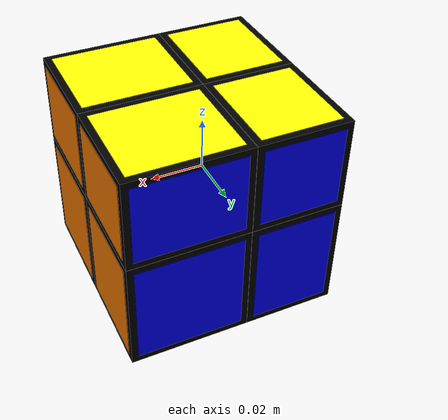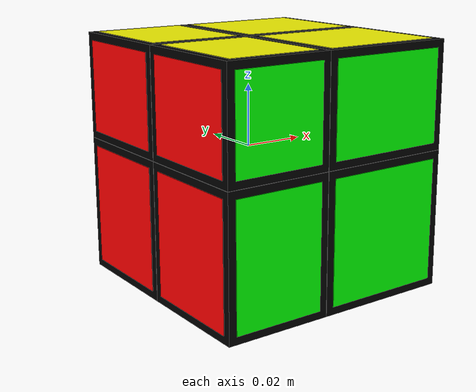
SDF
<?xml version="1.0" ?>
<sdf version="1.7">
	<model name="mirror_cube_2x2">
		<link name="center"/>
		<link name="cubie_0_0_0">
			<pose>-0.017550000000000003 -0.020050000000000002 -0.02255 0.0 0.0 0.0</pose>
			<inertial>
				<mass>0.024570000000000005</mass>
				<inertia>
					<ixx>7.422187500000001e-06</ixx>
					<ixy>0.0</ixy>
					<ixz>0.0</ixz>
					<iyy>6.654375000000002e-06</iyy>
					<iyz>0.0</iyz>
					<izz>5.784187500000001e-06</izz>
				</inertia>
			</inertial>
			<collision name="collision">
				<geometry>
					<box>
						<size>0.035 0.04 0.045</size>
					</box>
				</geometry>
				<surface>
					<friction>
						<ode>
							<mu>0.6</mu>
							<mu2>0.6</mu2>
						</ode>
					</friction>
				</surface>
			</collision>
			<visual name="black">
				<geometry>
					<box>
						<size>0.035 0.04 0.045</size>
					</box>
				</geometry>
				<material>
					<diffuse>0 0 0 1</diffuse>
				</material>
			</visual>
			<visual name="red">
				<pose>-0.0175 0.0 0.0 0.0 0.0 0.0</pose>
				<geometry>
					<box>
						<size>0.0003 0.035 0.04</size>
					</box>
				</geometry>
				<material>
					<diffuse>1 0 0 1</diffuse>
				</material>
			</visual>
			<visual name="green">
				<pose>0.0 -0.02 0.0 0.0 0.0 0.0</pose>
				<geometry>
					<box>
						<size>0.03 0.00035 0.04</size>
					</box>
				</geometry>
				<material>
					<diffuse>0 1 0 1</diffuse>
				</material>
			</visual>
			<visual name="white">
				<pose>0.0 0.0 -0.0225 0.0 0.0 0.0</pose>
				<geometry>
					<box>
						<size>0.03 0.035 0.0004</size>
					</box>
				</geometry>
				<material>
					<diffuse>1 1 1 1</diffuse>
				</material>
			</visual>
		</link>
		<joint name="ball_0_0_0" type="ball">
			<pose>0.017550000000000003 0.020050000000000002 0.02255 -0.0 -0.0 -0.0</pose>
			<parent>center</parent>
			<child>cubie_0_0_0</child>
			<axis>
				<dynamics>
					<damping>0.1</damping>
				</dynamics>
				<limit>
					<effort>0</effort>
				</limit>
			</axis>
		</joint>
		<link name="cubie_0_0_1">
			<pose>-0.017550000000000003 -0.020050000000000002 0.017550000000000003 0.0 0.0 0.0</pose>
			<inertial>
				<mass>0.019110000000000005</mass>
				<inertia>
					<ixx>4.498812500000002e-06</ixx>
					<ixy>0.0</ixy>
					<ixz>0.0</ixz>
					<iyy>3.901625000000002e-06</iyy>
					<iyz>0.0</iyz>
					<izz>4.498812500000002e-06</izz>
				</inertia>
			</inertial>
			<collision name="collision">
				<geometry>
					<box>
						<size>0.035 0.04 0.035</size>
					</box>
				</geometry>
				<surface>
					<friction>
						<ode>
							<mu>0.6</mu>
							<mu2>0.6</mu2>
						</ode>
					</friction>
				</surface>
			</collision>
			<visual name="black">
				<geometry>
					<box>
						<size>0.035 0.04 0.035</size>
					</box>
				</geometry>
				<material>
					<diffuse>0 0 0 1</diffuse>
				</material>
			</visual>
			<visual name="red">
				<pose>-0.0175 0.0 0.0 0.0 0.0 0.0</pose>
				<geometry>
					<box>
						<size>0.0003 0.035 0.03</size>
					</box>
				</geometry>
				<material>
					<diffuse>1 0 0 1</diffuse>
				</material>
			</visual>
			<visual name="green">
				<pose>0.0 -0.02 0.0 0.0 0.0 0.0</pose>
				<geometry>
					<box>
						<size>0.03 0.00035 0.03</size>
					</box>
				</geometry>
				<material>
					<diffuse>0 1 0 1</diffuse>
				</material>
			</visual>
			<visual name="yellow">
				<pose>0.0 0.0 0.0175 0.0 0.0 0.0</pose>
				<geometry>
					<box>
						<size>0.03 0.035 0.0003</size>
					</box>
				</geometry>
				<material>
					<diffuse>1 1 0 1</diffuse>
				</material>
			</visual>
		</link>
		<joint name="ball_0_0_1" type="ball">
			<pose>0.017550000000000003 0.020050000000000002 -0.017550000000000003 -0.0 -0.0 -0.0</pose>
			<parent>center</parent>
			<child>cubie_0_0_1</child>
			<axis>
				<dynamics>
					<damping>0.1</damping>
				</dynamics>
				<limit>
					<effort>0</effort>
				</limit>
			</axis>
		</joint>
		<link name="cubie_0_1_0">
			<pose>-0.017550000000000003 0.020050000000000002 -0.02255 0.0 0.0 0.0</pose>
			<inertial>
				<mass>0.024570000000000005</mass>
				<inertia>
					<ixx>7.422187500000001e-06</ixx>
					<ixy>0.0</ixy>
					<ixz>0.0</ixz>
					<iyy>6.654375000000002e-06</iyy>
					<iyz>0.0</iyz>
					<izz>5.784187500000001e-06</izz>
				</inertia>
			</inertial>
			<collision name="collision">
				<geometry>
					<box>
						<size>0.035 0.04 0.045</size>
					</box>
				</geometry>
				<surface>
					<friction>
						<ode>
							<mu>0.6</mu>
							<mu2>0.6</mu2>
						</ode>
					</friction>
				</surface>
			</collision>
			<visual name="black">
				<geometry>
					<box>
						<size>0.035 0.04 0.045</size>
					</box>
				</geometry>
				<material>
					<diffuse>0 0 0 1</diffuse>
				</material>
			</visual>
			<visual name="red">
				<pose>-0.0175 0.0 0.0 0.0 0.0 0.0</pose>
				<geometry>
					<box>
						<size>0.0003 0.035 0.04</size>
					</box>
				</geometry>
				<material>
					<diffuse>1 0 0 1</diffuse>
				</material>
			</visual>
			<visual name="blue">
				<pose>0.0 0.02 0.0 0.0 0.0 0.0</pose>
				<geometry>
					<box>
						<size>0.03 0.00035 0.04</size>
					</box>
				</geometry>
				<material>
					<diffuse>0 0 1 1</diffuse>
				</material>
			</visual>
			<visual name="white">
				<pose>0.0 0.0 -0.0225 0.0 0.0 0.0</pose>
				<geometry>
					<box>
						<size>0.03 0.035 0.0004</size>
					</box>
				</geometry>
				<material>
					<diffuse>1 1 1 1</diffuse>
				</material>
			</visual>
		</link>
		<joint name="ball_0_1_0" type="ball">
			<pose>0.017550000000000003 -0.020050000000000002 0.02255 -0.0 -0.0 -0.0</pose>
			<parent>center</parent>
			<child>cubie_0_1_0</child>
			<axis>
				<dynamics>
					<damping>0.1</damping>
				</dynamics>
				<limit>
					<effort>0</effort>
				</limit>
			</axis>
		</joint>
		<link name="cubie_0_1_1">
			<pose>-0.017550000000000003 0.020050000000000002 0.017550000000000003 0.0 0.0 0.0</pose>
			<inertial>
				<mass>0.019110000000000005</mass>
				<inertia>
					<ixx>4.498812500000002e-06</ixx>
					<ixy>0.0</ixy>
					<ixz>0.0</ixz>
					<iyy>3.901625000000002e-06</iyy>
					<iyz>0.0</iyz>
					<izz>4.498812500000002e-06</izz>
				</inertia>
			</inertial>
			<collision name="collision">
				<geometry>
					<box>
						<size>0.035 0.04 0.035</size>
					</box>
				</geometry>
				<surface>
					<friction>
						<ode>
							<mu>0.6</mu>
							<mu2>0.6</mu2>
						</ode>
					</friction>
				</surface>
			</collision>
			<visual name="black">
				<geometry>
					<box>
						<size>0.035 0.04 0.035</size>
					</box>
				</geometry>
				<material>
					<diffuse>0 0 0 1</diffuse>
				</material>
			</visual>
			<visual name="red">
				<pose>-0.0175 0.0 0.0 0.0 0.0 0.0</pose>
				<geometry>
					<box>
						<size>0.0003 0.035 0.03</size>
					</box>
				</geometry>
				<material>
					<diffuse>1 0 0 1</diffuse>
				</material>
			</visual>
			<visual name="blue">
				<pose>0.0 0.02 0.0 0.0 0.0 0.0</pose>
				<geometry>
					<box>
						<size>0.03 0.00035 0.03</size>
					</box>
				</geometry>
				<material>
					<diffuse>0 0 1 1</diffuse>
				</material>
			</visual>
			<visual name="yellow">
				<pose>0.0 0.0 0.0175 0.0 0.0 0.0</pose>
				<geometry>
					<box>
						<size>0.03 0.035 0.0003</size>
					</box>
				</geometry>
				<material>
					<diffuse>1 1 0 1</diffuse>
				</material>
			</visual>
		</link>
		<joint name="ball_0_1_1" type="ball">
			<pose>0.017550000000000003 -0.020050000000000002 -0.017550000000000003 -0.0 -0.0 -0.0</pose>
			<parent>center</parent>
			<child>cubie_0_1_1</child>
			<axis>
				<dynamics>
					<damping>0.1</damping>
				</dynamics>
				<limit>
					<effort>0</effort>
				</limit>
			</axis>
		</joint>
		<link name="cubie_1_0_0">
			<pose>0.02255 -0.020050000000000002 -0.02255 0.0 0.0 0.0</pose>
			<inertial>
				<mass>0.03158999999999999</mass>
				<inertia>
					<ixx>9.542812499999997e-06</ixx>
					<ixy>0.0</ixy>
					<ixz>0.0</ixz>
					<iyy>1.0661624999999996e-05</iyy>
					<iyz>0.0</iyz>
					<izz>9.542812499999997e-06</izz>
				</inertia>
			</inertial>
			<collision name="collision">
				<geometry>
					<box>
						<size>0.045 0.04 0.045</size>
					</box>
				</geometry>
				<surface>
					<friction>
						<ode>
							<mu>0.6</mu>
							<mu2>0.6</mu2>
						</ode>
					</friction>
				</surface>
			</collision>
			<visual name="black">
				<geometry>
					<box>
						<size>0.045 0.04 0.045</size>
					</box>
				</geometry>
				<material>
					<diffuse>0 0 0 1</diffuse>
				</material>
			</visual>
			<visual name="orange">
				<pose>0.0225 0.0 0.0 0.0 0.0 0.0</pose>
				<geometry>
					<box>
						<size>0.0004 0.035 0.04</size>
					</box>
				</geometry>
				<material>
					<diffuse>1.0 0.5 0.0 1.0</diffuse>
				</material>
			</visual>
			<visual name="green">
				<pose>0.0 -0.02 0.0 0.0 0.0 0.0</pose>
				<geometry>
					<box>
						<size>0.04 0.00035 0.04</size>
					</box>
				</geometry>
				<material>
					<diffuse>0 1 0 1</diffuse>
				</material>
			</visual>
			<visual name="white">
				<pose>0.0 0.0 -0.0225 0.0 0.0 0.0</pose>
				<geometry>
					<box>
						<size>0.04 0.035 0.0004</size>
					</box>
				</geometry>
				<material>
					<diffuse>1 1 1 1</diffuse>
				</material>
			</visual>
		</link>
		<joint name="ball_1_0_0" type="ball">
			<pose>-0.02255 0.020050000000000002 0.02255 -0.0 -0.0 -0.0</pose>
			<parent>center</parent>
			<child>cubie_1_0_0</child>
			<axis>
				<dynamics>
					<damping>0.1</damping>
				</dynamics>
				<limit>
					<effort>0</effort>
				</limit>
			</axis>
		</joint>
		<link name="cubie_1_0_1">
			<pose>0.02255 -0.020050000000000002 0.017550000000000003 0.0 0.0 0.0</pose>
			<inertial>
				<mass>0.02457</mass>
				<inertia>
					<ixx>5.784187500000001e-06</ixx>
					<ixy>0.0</ixy>
					<ixz>0.0</ixz>
					<iyy>6.654375000000002e-06</iyy>
					<iyz>0.0</iyz>
					<izz>7.422187500000001e-06</izz>
				</inertia>
			</inertial>
			<collision name="collision">
				<geometry>
					<box>
						<size>0.045 0.04 0.035</size>
					</box>
				</geometry>
				<surface>
					<friction>
						<ode>
							<mu>0.6</mu>
							<mu2>0.6</mu2>
						</ode>
					</friction>
				</surface>
			</collision>
			<visual name="black">
				<geometry>
					<box>
						<size>0.045 0.04 0.035</size>
					</box>
				</geometry>
				<material>
					<diffuse>0 0 0 1</diffuse>
				</material>
			</visual>
			<visual name="orange">
				<pose>0.0225 0.0 0.0 0.0 0.0 0.0</pose>
				<geometry>
					<box>
						<size>0.0004 0.035 0.03</size>
					</box>
				</geometry>
				<material>
					<diffuse>1.0 0.5 0.0 1.0</diffuse>
				</material>
			</visual>
			<visual name="green">
				<pose>0.0 -0.02 0.0 0.0 0.0 0.0</pose>
				<geometry>
					<box>
						<size>0.04 0.00035 0.03</size>
					</box>
				</geometry>
				<material>
					<diffuse>0 1 0 1</diffuse>
				</material>
			</visual>
			<visual name="yellow">
				<pose>0.0 0.0 0.0175 0.0 0.0 0.0</pose>
				<geometry>
					<box>
						<size>0.04 0.035 0.0003</size>
					</box>
				</geometry>
				<material>
					<diffuse>1 1 0 1</diffuse>
				</material>
			</visual>
		</link>
		<joint name="ball_1_0_1" type="ball">
			<pose>-0.02255 0.020050000000000002 -0.017550000000000003 -0.0 -0.0 -0.0</pose>
			<parent>center</parent>
			<child>cubie_1_0_1</child>
			<axis>
				<dynamics>
					<damping>0.1</damping>
				</dynamics>
				<limit>
					<effort>0</effort>
				</limit>
			</axis>
		</joint>
		<link name="cubie_1_1_0">
			<pose>0.02255 0.020050000000000002 -0.02255 0.0 0.0 0.0</pose>
			<inertial>
				<mass>0.03158999999999999</mass>
				<inertia>
					<ixx>9.542812499999997e-06</ixx>
					<ixy>0.0</ixy>
					<ixz>0.0</ixz>
					<iyy>1.0661624999999996e-05</iyy>
					<iyz>0.0</iyz>
					<izz>9.542812499999997e-06</izz>
				</inertia>
			</inertial>
			<collision name="collision">
				<geometry>
					<box>
						<size>0.045 0.04 0.045</size>
					</box>
				</geometry>
				<surface>
					<friction>
						<ode>
							<mu>0.6</mu>
							<mu2>0.6</mu2>
						</ode>
					</friction>
				</surface>
			</collision>
			<visual name="black">
				<geometry>
					<box>
						<size>0.045 0.04 0.045</size>
					</box>
				</geometry>
				<material>
					<diffuse>0 0 0 1</diffuse>
				</material>
			</visual>
			<visual name="orange">
				<pose>0.0225 0.0 0.0 0.0 0.0 0.0</pose>
				<geometry>
					<box>
						<size>0.0004 0.035 0.04</size>
					</box>
				</geometry>
				<material>
					<diffuse>1.0 0.5 0.0 1.0</diffuse>
				</material>
			</visual>
			<visual name="blue">
				<pose>0.0 0.02 0.0 0.0 0.0 0.0</pose>
				<geometry>
					<box>
						<size>0.04 0.00035 0.04</size>
					</box>
				</geometry>
				<material>
					<diffuse>0 0 1 1</diffuse>
				</material>
			</visual>
			<visual name="white">
				<pose>0.0 0.0 -0.0225 0.0 0.0 0.0</pose>
				<geometry>
					<box>
						<size>0.04 0.035 0.0004</size>
					</box>
				</geometry>
				<material>
					<diffuse>1 1 1 1</diffuse>
				</material>
			</visual>
		</link>
		<joint name="ball_1_1_0" type="ball">
			<pose>-0.02255 -0.020050000000000002 0.02255 -0.0 -0.0 -0.0</pose>
			<parent>center</parent>
			<child>cubie_1_1_0</child>
			<axis>
				<dynamics>
					<damping>0.1</damping>
				</dynamics>
				<limit>
					<effort>0</effort>
				</limit>
			</axis>
		</joint>
		<link name="cubie_1_1_1">
			<pose>0.02255 0.020050000000000002 0.017550000000000003 0.0 0.0 0.0</pose>
			<inertial>
				<mass>0.02457</mass>
				<inertia>
					<ixx>5.784187500000001e-06</ixx>
					<ixy>0.0</ixy>
					<ixz>0.0</ixz>
					<iyy>6.654375000000002e-06</iyy>
					<iyz>0.0</iyz>
					<izz>7.422187500000001e-06</izz>
				</inertia>
			</inertial>
			<collision name="collision">
				<geometry>
					<box>
						<size>0.045 0.04 0.035</size>
					</box>
				</geometry>
				<surface>
					<friction>
						<ode>
							<mu>0.6</mu>
							<mu2>0.6</mu2>
						</ode>
					</friction>
				</surface>
			</collision>
			<visual name="black">
				<geometry>
					<box>
						<size>0.045 0.04 0.035</size>
					</box>
				</geometry>
				<material>
					<diffuse>0 0 0 1</diffuse>
				</material>
			</visual>
			<visual name="orange">
				<pose>0.0225 0.0 0.0 0.0 0.0 0.0</pose>
				<geometry>
					<box>
						<size>0.0004 0.035 0.03</size>
					</box>
				</geometry>
				<material>
					<diffuse>1.0 0.5 0.0 1.0</diffuse>
				</material>
			</visual>
			<visual name="blue">
				<pose>0.0 0.02 0.0 0.0 0.0 0.0</pose>
				<geometry>
					<box>
						<size>0.04 0.00035 0.03</size>
					</box>
				</geometry>
				<material>
					<diffuse>0 0 1 1</diffuse>
				</material>
			</visual>
			<visual name="yellow">
				<pose>0.0 0.0 0.0175 0.0 0.0 0.0</pose>
				<geometry>
					<box>
						<size>0.04 0.035 0.0003</size>
					</box>
				</geometry>
				<material>
					<diffuse>1 1 0 1</diffuse>
				</material>
			</visual>
		</link>
		<joint name="ball_1_1_1" type="ball">
			<pose>-0.02255 -0.020050000000000002 -0.017550000000000003 -0.0 -0.0 -0.0</pose>
			<parent>center</parent>
			<child>cubie_1_1_1</child>
			<axis>
				<dynamics>
					<damping>0.1</damping>
				</dynamics>
				<limit>
					<effort>0</effort>
				</limit>
			</axis>
		</joint>
	</model>
</sdf>
